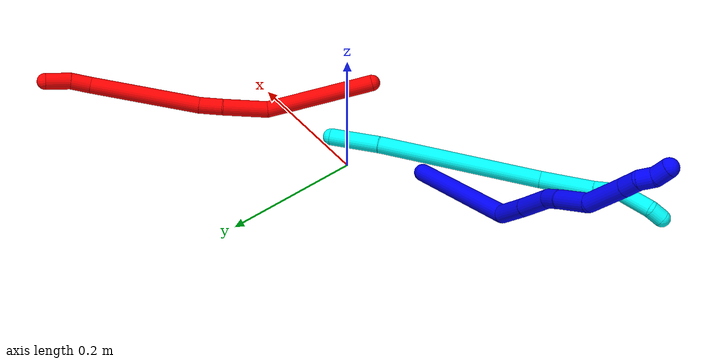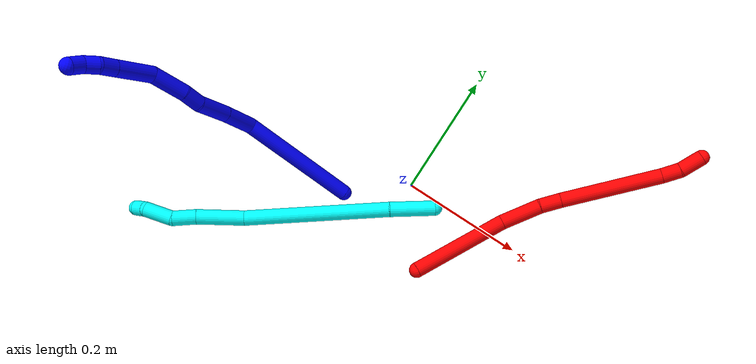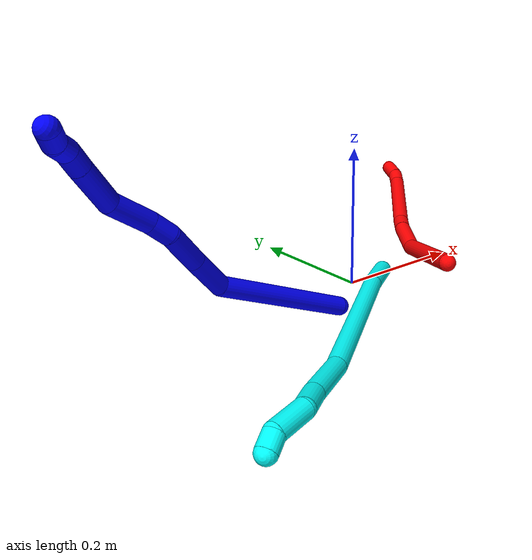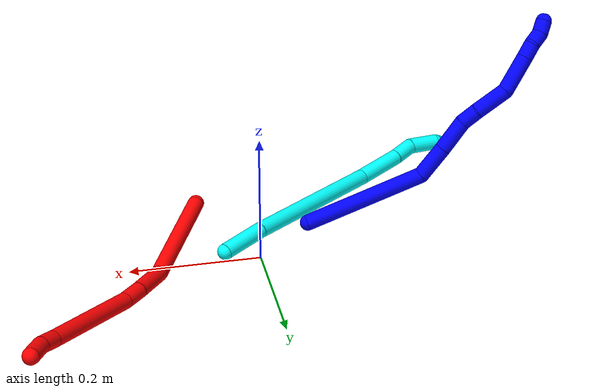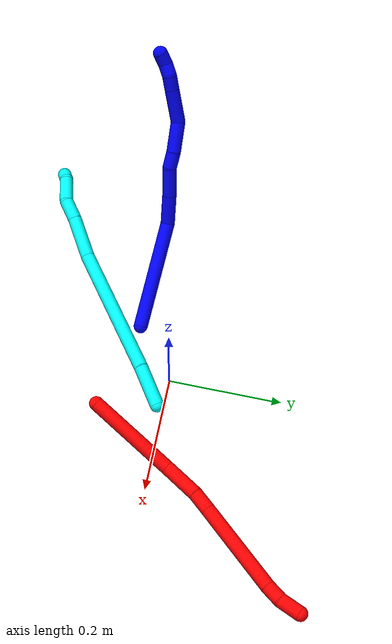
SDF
<sdf version="1.7">
 <world name="default">
  <model name="1">
   <static>0</static>
   <link name="1">
    <collision name="collision-cylinder-e_1_1_4">
     <pose>-0.032755 -0.01048 0.088832 0.117433 -0.351026 -0.020848</pose>
     <geometry><cylinder><radius>0.0125</radius><length>0.190514</length></cylinder></geometry>
     <surface>
      <friction><ode><mu>1.16</mu><mu2>1.16</mu2><slip1>0</slip1><slip2>0</slip2></ode></friction>
      <contact><ode><kp>1e+06</kp><kd>1</kd><max_vel>0</max_vel><min_depth>0.001</min_depth></ode></contact>
     </surface>
    </collision>
    <visual name="visual-cylinder-e_1_1_4">
     <pose>-0.032755 -0.01048 0.088832 0.117433 -0.351026 -0.020848</pose>
     <geometry><cylinder><radius>0.0125</radius><length>0.190514</length></cylinder></geometry>
     <material><ambient>0 0 1 1</ambient></material>
    </visual>
    <collision name="collision-cylinder-e_2_4_5">
     <pose>-0.06598 -0.013973 0.203246 -0.266605 -0.017697 0.002373</pose>
     <geometry><cylinder><radius>0.0125</radius><length>0.053046</length></cylinder></geometry>
     <surface>
      <friction><ode><mu>1.16</mu><mu2>1.16</mu2><slip1>0</slip1><slip2>0</slip2></ode></friction>
      <contact><ode><kp>1e+06</kp><kd>1</kd><max_vel>0</max_vel><min_depth>0.001</min_depth></ode></contact>
     </surface>
    </collision>
    <visual name="visual-cylinder-e_2_4_5">
     <pose>-0.06598 -0.013973 0.203246 -0.266605 -0.017697 0.002373</pose>
     <geometry><cylinder><radius>0.0125</radius><length>0.053046</length></cylinder></geometry>
     <material><ambient>0 0 1 1</ambient></material>
    </visual>
    <collision name="collision-cylinder-e_3_5_6">
     <pose>-0.065542 -0.000518 0.25345 -0.256917 0.035609 -0.0046</pose>
     <geometry><cylinder><radius>0.0125</radius><length>0.050947</length></cylinder></geometry>
     <surface>
      <friction><ode><mu>1.16</mu><mu2>1.16</mu2><slip1>0</slip1><slip2>0</slip2></ode></friction>
      <contact><ode><kp>1e+06</kp><kd>1</kd><max_vel>0</max_vel><min_depth>0.001</min_depth></ode></contact>
     </surface>
    </collision>
    <visual name="visual-cylinder-e_3_5_6">
     <pose>-0.065542 -0.000518 0.25345 -0.256917 0.035609 -0.0046</pose>
     <geometry><cylinder><radius>0.0125</radius><length>0.050947</length></cylinder></geometry>
     <material><ambient>0 0 1 1</ambient></material>
    </visual>
    <collision name="collision-cylinder-e_4_6_7">
     <pose>-0.068078 0.008703 0.291672 -0.199671 -0.243228 0.024483</pose>
     <geometry><cylinder><radius>0.0125</radius><length>0.028593</length></cylinder></geometry>
     <surface>
      <friction><ode><mu>1.16</mu><mu2>1.16</mu2><slip1>0</slip1><slip2>0</slip2></ode></friction>
      <contact><ode><kp>1e+06</kp><kd>1</kd><max_vel>0</max_vel><min_depth>0.001</min_depth></ode></contact>
     </surface>
    </collision>
    <visual name="visual-cylinder-e_4_6_7">
     <pose>-0.068078 0.008703 0.291672 -0.199671 -0.243228 0.024483</pose>
     <geometry><cylinder><radius>0.0125</radius><length>0.028593</length></cylinder></geometry>
     <material><ambient>0 0 1 1</ambient></material>
    </visual>
    <collision name="collision-cylinder-e_5_7_8">
     <pose>-0.076387 0.012611 0.331206 -0.04455 -0.185278 0.00414</pose>
     <geometry><cylinder><radius>0.0125</radius><length>0.052824</length></cylinder></geometry>
     <surface>
      <friction><ode><mu>1.16</mu><mu2>1.16</mu2><slip1>0</slip1><slip2>0</slip2></ode></friction>
      <contact><ode><kp>1e+06</kp><kd>1</kd><max_vel>0</max_vel><min_depth>0.001</min_depth></ode></contact>
     </surface>
    </collision>
    <visual name="visual-cylinder-e_5_7_8">
     <pose>-0.076387 0.012611 0.331206 -0.04455 -0.185278 0.00414</pose>
     <geometry><cylinder><radius>0.0125</radius><length>0.052824</length></cylinder></geometry>
     <material><ambient>0 0 1 1</ambient></material>
    </visual>
    <collision name="collision-cylinder-e_6_8_9">
     <pose>-0.074954 0.019564 0.385376 -0.202495 0.215132 -0.02194</pose>
     <geometry><cylinder><radius>0.0125</radius><length>0.059008</length></cylinder></geometry>
     <surface>
      <friction><ode><mu>1.16</mu><mu2>1.16</mu2><slip1>0</slip1><slip2>0</slip2></ode></friction>
      <contact><ode><kp>1e+06</kp><kd>1</kd><max_vel>0</max_vel><min_depth>0.001</min_depth></ode></contact>
     </surface>
    </collision>
    <visual name="visual-cylinder-e_6_8_9">
     <pose>-0.074954 0.019564 0.385376 -0.202495 0.215132 -0.02194</pose>
     <geometry><cylinder><radius>0.0125</radius><length>0.059008</length></cylinder></geometry>
     <material><ambient>0 0 1 1</ambient></material>
    </visual>
    <collision name="collision-cylinder-e_7_9_10">
     <pose>-0.066081 0.028064 0.424884 -0.235262 0.218541 -0.025928</pose>
     <geometry><cylinder><radius>0.0125</radius><length>0.023751</length></cylinder></geometry>
     <surface>
      <friction><ode><mu>1.16</mu><mu2>1.16</mu2><slip1>0</slip1><slip2>0</slip2></ode></friction>
      <contact><ode><kp>1e+06</kp><kd>1</kd><max_vel>0</max_vel><min_depth>0.001</min_depth></ode></contact>
     </surface>
    </collision>
    <visual name="visual-cylinder-e_7_9_10">
     <pose>-0.066081 0.028064 0.424884 -0.235262 0.218541 -0.025928</pose>
     <geometry><cylinder><radius>0.0125</radius><length>0.023751</length></cylinder></geometry>
     <material><ambient>0 0 1 1</ambient></material>
    </visual>
    <collision name="collision-cylinder-e_8_10_11">
     <pose>-0.06074 0.029589 0.446095 0.117828 0.269677 0.016003</pose>
     <geometry><cylinder><radius>0.0125</radius><length>0.020765</length></cylinder></geometry>
     <surface>
      <friction><ode><mu>1.16</mu><mu2>1.16</mu2><slip1>0</slip1><slip2>0</slip2></ode></friction>
      <contact><ode><kp>1e+06</kp><kd>1</kd><max_vel>0</max_vel><min_depth>0.001</min_depth></ode></contact>
     </surface>
    </collision>
    <visual name="visual-cylinder-e_8_10_11">
     <pose>-0.06074 0.029589 0.446095 0.117828 0.269677 0.016003</pose>
     <geometry><cylinder><radius>0.0125</radius><length>0.020765</length></cylinder></geometry>
     <material><ambient>0 0 1 1</ambient></material>
    </visual>
    <collision name="collision-cylinder-e_9_11_2">
     <pose>-0.053299 0.030317 0.464983 -0.209645 0.472384 -0.050633</pose>
     <geometry><cylinder><radius>0.0125</radius><length>0.020552</length></cylinder></geometry>
     <surface>
      <friction><ode><mu>1.16</mu><mu2>1.16</mu2><slip1>0</slip1><slip2>0</slip2></ode></friction>
      <contact><ode><kp>1e+06</kp><kd>1</kd><max_vel>0</max_vel><min_depth>0.001</min_depth></ode></contact>
     </surface>
    </collision>
    <visual name="visual-cylinder-e_9_11_2">
     <pose>-0.053299 0.030317 0.464983 -0.209645 0.472384 -0.050633</pose>
     <geometry><cylinder><radius>0.0125</radius><length>0.020552</length></cylinder></geometry>
     <material><ambient>0 0 1 1</ambient></material>
    </visual>
    <collision name="collision-sphere-2">
     <pose>-0.048623 0.032222 0.473934 0 -0 0</pose>
     <geometry><sphere><radius>0.0125</radius></sphere></geometry>
     <surface>
      <friction><ode><mu>1.16</mu><mu2>1.16</mu2><slip1>0</slip1><slip2>0</slip2></ode></friction>
      <contact><ode><kp>1e+06</kp><kd>1</kd><max_vel>0</max_vel><min_depth>0.001</min_depth></ode></contact>
     </surface>
    </collision>
    <visual name="visual-sphere-2">
     <pose>-0.048623 0.032222 0.473934 0 -0 0</pose>
     <geometry><sphere><radius>0.0125</radius></sphere></geometry>
     <material><ambient>0 0 1 1</ambient></material>
    </visual>
    <collision name="collision-sphere-11">
     <pose>-0.057974 0.028413 0.456033 0 -0 0</pose>
     <geometry><sphere><radius>0.0125</radius></sphere></geometry>
     <surface>
      <friction><ode><mu>1.16</mu><mu2>1.16</mu2><slip1>0</slip1><slip2>0</slip2></ode></friction>
      <contact><ode><kp>1e+06</kp><kd>1</kd><max_vel>0</max_vel><min_depth>0.001</min_depth></ode></contact>
     </surface>
    </collision>
    <visual name="visual-sphere-11">
     <pose>-0.057974 0.028413 0.456033 0 -0 0</pose>
     <geometry><sphere><radius>0.0125</radius></sphere></geometry>
     <material><ambient>0 0 1 1</ambient></material>
    </visual>
    <collision name="collision-sphere-10">
     <pose>-0.063506 0.030766 0.436158 0 -0 0</pose>
     <geometry><sphere><radius>0.0125</radius></sphere></geometry>
     <surface>
      <friction><ode><mu>1.16</mu><mu2>1.16</mu2><slip1>0</slip1><slip2>0</slip2></ode></friction>
      <contact><ode><kp>1e+06</kp><kd>1</kd><max_vel>0</max_vel><min_depth>0.001</min_depth></ode></contact>
     </surface>
    </collision>
    <visual name="visual-sphere-10">
     <pose>-0.063506 0.030766 0.436158 0 -0 0</pose>
     <geometry><sphere><radius>0.0125</radius></sphere></geometry>
     <material><ambient>0 0 1 1</ambient></material>
    </visual>
    <collision name="collision-sphere-9">
     <pose>-0.068656 0.025361 0.413611 0 -0 0</pose>
     <geometry><sphere><radius>0.0125</radius></sphere></geometry>
     <surface>
      <friction><ode><mu>1.16</mu><mu2>1.16</mu2><slip1>0</slip1><slip2>0</slip2></ode></friction>
      <contact><ode><kp>1e+06</kp><kd>1</kd><max_vel>0</max_vel><min_depth>0.001</min_depth></ode></contact>
     </surface>
    </collision>
    <visual name="visual-sphere-9">
     <pose>-0.068656 0.025361 0.413611 0 -0 0</pose>
     <geometry><sphere><radius>0.0125</radius></sphere></geometry>
     <material><ambient>0 0 1 1</ambient></material>
    </visual>
    <collision name="collision-sphere-4">
     <pose>-0.06551 -0.02096 0.177664 0 -0 0</pose>
     <geometry><sphere><radius>0.0125</radius></sphere></geometry>
     <surface>
      <friction><ode><mu>1.16</mu><mu2>1.16</mu2><slip1>0</slip1><slip2>0</slip2></ode></friction>
      <contact><ode><kp>1e+06</kp><kd>1</kd><max_vel>0</max_vel><min_depth>0.001</min_depth></ode></contact>
     </surface>
    </collision>
    <visual name="visual-sphere-4">
     <pose>-0.06551 -0.02096 0.177664 0 -0 0</pose>
     <geometry><sphere><radius>0.0125</radius></sphere></geometry>
     <material><ambient>0 0 1 1</ambient></material>
    </visual>
    <collision name="collision-sphere-1">
     <geometry><sphere><radius>0.0125</radius></sphere></geometry>
     <surface>
      <friction><ode><mu>1.16</mu><mu2>1.16</mu2><slip1>0</slip1><slip2>0</slip2></ode></friction>
      <contact><ode><kp>1e+06</kp><kd>1</kd><max_vel>0</max_vel><min_depth>0.001</min_depth></ode></contact>
     </surface>
    </collision>
    <visual name="visual-sphere-1">
     <geometry><sphere><radius>0.0125</radius></sphere></geometry>
     <material><ambient>0 0 1 1</ambient></material>
    </visual>
    <collision name="collision-sphere-8">
     <pose>-0.081253 0.013767 0.35714 0 -0 0</pose>
     <geometry><sphere><radius>0.0125</radius></sphere></geometry>
     <surface>
      <friction><ode><mu>1.16</mu><mu2>1.16</mu2><slip1>0</slip1><slip2>0</slip2></ode></friction>
      <contact><ode><kp>1e+06</kp><kd>1</kd><max_vel>0</max_vel><min_depth>0.001</min_depth></ode></contact>
     </surface>
    </collision>
    <visual name="visual-sphere-8">
     <pose>-0.081253 0.013767 0.35714 0 -0 0</pose>
     <geometry><sphere><radius>0.0125</radius></sphere></geometry>
     <material><ambient>0 0 1 1</ambient></material>
    </visual>
    <collision name="collision-sphere-5">
     <pose>-0.066449 -0.006987 0.228828 0 -0 0</pose>
     <geometry><sphere><radius>0.0125</radius></sphere></geometry>
     <surface>
      <friction><ode><mu>1.16</mu><mu2>1.16</mu2><slip1>0</slip1><slip2>0</slip2></ode></friction>
      <contact><ode><kp>1e+06</kp><kd>1</kd><max_vel>0</max_vel><min_depth>0.001</min_depth></ode></contact>
     </surface>
    </collision>
    <visual name="visual-sphere-5">
     <pose>-0.066449 -0.006987 0.228828 0 -0 0</pose>
     <geometry><sphere><radius>0.0125</radius></sphere></geometry>
     <material><ambient>0 0 1 1</ambient></material>
    </visual>
    <collision name="collision-sphere-6">
     <pose>-0.064635 0.005951 0.278072 0 -0 0</pose>
     <geometry><sphere><radius>0.0125</radius></sphere></geometry>
     <surface>
      <friction><ode><mu>1.16</mu><mu2>1.16</mu2><slip1>0</slip1><slip2>0</slip2></ode></friction>
      <contact><ode><kp>1e+06</kp><kd>1</kd><max_vel>0</max_vel><min_depth>0.001</min_depth></ode></contact>
     </surface>
    </collision>
    <visual name="visual-sphere-6">
     <pose>-0.064635 0.005951 0.278072 0 -0 0</pose>
     <geometry><sphere><radius>0.0125</radius></sphere></geometry>
     <material><ambient>0 0 1 1</ambient></material>
    </visual>
    <collision name="collision-sphere-7">
     <pose>-0.071521 0.011455 0.305272 0 -0 0</pose>
     <geometry><sphere><radius>0.0125</radius></sphere></geometry>
     <surface>
      <friction><ode><mu>1.16</mu><mu2>1.16</mu2><slip1>0</slip1><slip2>0</slip2></ode></friction>
      <contact><ode><kp>1e+06</kp><kd>1</kd><max_vel>0</max_vel><min_depth>0.001</min_depth></ode></contact>
     </surface>
    </collision>
    <visual name="visual-sphere-7">
     <pose>-0.071521 0.011455 0.305272 0 -0 0</pose>
     <geometry><sphere><radius>0.0125</radius></sphere></geometry>
     <material><ambient>0 0 1 1</ambient></material>
    </visual>
    <inertial>
     <pose>-0.05482 0.002419 0.236209 0 -0 0</pose>
     <mass>0.5</mass>
     <inertia>
      <ixx>0.000601</ixx>
      <ixy>0</ixy>
      <ixz>0</ixz>
      <iyy>0.000639</iyy>
      <iyz>0</iyz>
      <izz>0.000287</izz>
     </inertia>
    </inertial>
   </link>
   <pose>-0.087708 -0.070325 0.011532 0.931295 -0.234272 -1.14457</pose>
  </model>
  <model name="2">
   <static>0</static>
   <link name="2">
    <collision name="collision-cylinder-e_1_1_4">
     <pose>0.011723 0.004182 0.080701 -0.051773 0.144065 -0.003737</pose>
     <geometry><cylinder><radius>0.0125</radius><length>0.16331</length></cylinder></geometry>
     <surface>
      <friction><ode><mu>1.16</mu><mu2>1.16</mu2><slip1>0</slip1><slip2>0</slip2></ode></friction>
      <contact><ode><kp>1e+06</kp><kd>1</kd><max_vel>0</max_vel><min_depth>0.001</min_depth></ode></contact>
     </surface>
    </collision>
    <visual name="visual-cylinder-e_1_1_4">
     <pose>0.011723 0.004182 0.080701 -0.051773 0.144065 -0.003737</pose>
     <geometry><cylinder><radius>0.0125</radius><length>0.16331</length></cylinder></geometry>
     <material><ambient>1 0 0 1</ambient></material>
    </visual>
    <collision name="collision-cylinder-e_2_4_5">
     <pose>0.021006 0.019223 0.193638 -0.324926 -0.071598 0.01174</pose>
     <geometry><cylinder><radius>0.0125</radius><length>0.068206</length></cylinder></geometry>
     <surface>
      <friction><ode><mu>1.16</mu><mu2>1.16</mu2><slip1>0</slip1><slip2>0</slip2></ode></friction>
      <contact><ode><kp>1e+06</kp><kd>1</kd><max_vel>0</max_vel><min_depth>0.001</min_depth></ode></contact>
     </surface>
    </collision>
    <visual name="visual-cylinder-e_2_4_5">
     <pose>0.021006 0.019223 0.193638 -0.324926 -0.071598 0.01174</pose>
     <geometry><cylinder><radius>0.0125</radius><length>0.068206</length></cylinder></geometry>
     <material><ambient>1 0 0 1</ambient></material>
    </visual>
    <collision name="collision-cylinder-e_3_5_6">
     <pose>0.01583 0.033251 0.242947 -0.183498 -0.156284 0.014408</pose>
     <geometry><cylinder><radius>0.0125</radius><length>0.035158</length></cylinder></geometry>
     <surface>
      <friction><ode><mu>1.16</mu><mu2>1.16</mu2><slip1>0</slip1><slip2>0</slip2></ode></friction>
      <contact><ode><kp>1e+06</kp><kd>1</kd><max_vel>0</max_vel><min_depth>0.001</min_depth></ode></contact>
     </surface>
    </collision>
    <visual name="visual-cylinder-e_3_5_6">
     <pose>0.01583 0.033251 0.242947 -0.183498 -0.156284 0.014408</pose>
     <geometry><cylinder><radius>0.0125</radius><length>0.035158</length></cylinder></geometry>
     <material><ambient>1 0 0 1</ambient></material>
    </visual>
    <collision name="collision-cylinder-e_4_6_7">
     <pose>-0.005818 0.05864 0.337386 -0.279691 -0.230772 0.032626</pose>
     <geometry><cylinder><radius>0.0125</radius><length>0.16537</length></cylinder></geometry>
     <surface>
      <friction><ode><mu>1.16</mu><mu2>1.16</mu2><slip1>0</slip1><slip2>0</slip2></ode></friction>
      <contact><ode><kp>1e+06</kp><kd>1</kd><max_vel>0</max_vel><min_depth>0.001</min_depth></ode></contact>
     </surface>
    </collision>
    <visual name="visual-cylinder-e_4_6_7">
     <pose>-0.005818 0.05864 0.337386 -0.279691 -0.230772 0.032626</pose>
     <geometry><cylinder><radius>0.0125</radius><length>0.16537</length></cylinder></geometry>
     <material><ambient>1 0 0 1</ambient></material>
    </visual>
    <collision name="collision-cylinder-e_5_7_8">
     <pose>-0.027788 0.086655 0.428426 -0.400776 -0.203023 0.041373</pose>
     <geometry><cylinder><radius>0.0125</radius><length>0.030327</length></cylinder></geometry>
     <surface>
      <friction><ode><mu>1.16</mu><mu2>1.16</mu2><slip1>0</slip1><slip2>0</slip2></ode></friction>
      <contact><ode><kp>1e+06</kp><kd>1</kd><max_vel>0</max_vel><min_depth>0.001</min_depth></ode></contact>
     </surface>
    </collision>
    <visual name="visual-cylinder-e_5_7_8">
     <pose>-0.027788 0.086655 0.428426 -0.400776 -0.203023 0.041373</pose>
     <geometry><cylinder><radius>0.0125</radius><length>0.030327</length></cylinder></geometry>
     <material><ambient>1 0 0 1</ambient></material>
    </visual>
    <collision name="collision-cylinder-e_6_8_2">
     <pose>-0.030003 0.100118 0.459261 -0.420269 0.04478 -0.009552</pose>
     <geometry><cylinder><radius>0.0125</radius><length>0.037627</length></cylinder></geometry>
     <surface>
      <friction><ode><mu>1.16</mu><mu2>1.16</mu2><slip1>0</slip1><slip2>0</slip2></ode></friction>
      <contact><ode><kp>1e+06</kp><kd>1</kd><max_vel>0</max_vel><min_depth>0.001</min_depth></ode></contact>
     </surface>
    </collision>
    <visual name="visual-cylinder-e_6_8_2">
     <pose>-0.030003 0.100118 0.459261 -0.420269 0.04478 -0.009552</pose>
     <geometry><cylinder><radius>0.0125</radius><length>0.037627</length></cylinder></geometry>
     <material><ambient>1 0 0 1</ambient></material>
    </visual>
    <collision name="collision-sphere-2">
     <pose>-0.029161 0.107786 0.47642 0 -0 0</pose>
     <geometry><sphere><radius>0.0125</radius></sphere></geometry>
     <surface>
      <friction><ode><mu>1.16</mu><mu2>1.16</mu2><slip1>0</slip1><slip2>0</slip2></ode></friction>
      <contact><ode><kp>1e+06</kp><kd>1</kd><max_vel>0</max_vel><min_depth>0.001</min_depth></ode></contact>
     </surface>
    </collision>
    <visual name="visual-sphere-2">
     <pose>-0.029161 0.107786 0.47642 0 -0 0</pose>
     <geometry><sphere><radius>0.0125</radius></sphere></geometry>
     <material><ambient>1 0 0 1</ambient></material>
    </visual>
    <collision name="collision-sphere-4">
     <pose>0.023446 0.008364 0.161402 0 -0 0</pose>
     <geometry><sphere><radius>0.0125</radius></sphere></geometry>
     <surface>
      <friction><ode><mu>1.16</mu><mu2>1.16</mu2><slip1>0</slip1><slip2>0</slip2></ode></friction>
      <contact><ode><kp>1e+06</kp><kd>1</kd><max_vel>0</max_vel><min_depth>0.001</min_depth></ode></contact>
     </surface>
    </collision>
    <visual name="visual-sphere-4">
     <pose>0.023446 0.008364 0.161402 0 -0 0</pose>
     <geometry><sphere><radius>0.0125</radius></sphere></geometry>
     <material><ambient>1 0 0 1</ambient></material>
    </visual>
    <collision name="collision-sphere-1">
     <geometry><sphere><radius>0.0125</radius></sphere></geometry>
     <surface>
      <friction><ode><mu>1.16</mu><mu2>1.16</mu2><slip1>0</slip1><slip2>0</slip2></ode></friction>
      <contact><ode><kp>1e+06</kp><kd>1</kd><max_vel>0</max_vel><min_depth>0.001</min_depth></ode></contact>
     </surface>
    </collision>
    <visual name="visual-sphere-1">
     <geometry><sphere><radius>0.0125</radius></sphere></geometry>
     <material><ambient>1 0 0 1</ambient></material>
    </visual>
    <collision name="collision-sphere-8">
     <pose>-0.030846 0.09245 0.442102 0 -0 0</pose>
     <geometry><sphere><radius>0.0125</radius></sphere></geometry>
     <surface>
      <friction><ode><mu>1.16</mu><mu2>1.16</mu2><slip1>0</slip1><slip2>0</slip2></ode></friction>
      <contact><ode><kp>1e+06</kp><kd>1</kd><max_vel>0</max_vel><min_depth>0.001</min_depth></ode></contact>
     </surface>
    </collision>
    <visual name="visual-sphere-8">
     <pose>-0.030846 0.09245 0.442102 0 -0 0</pose>
     <geometry><sphere><radius>0.0125</radius></sphere></geometry>
     <material><ambient>1 0 0 1</ambient></material>
    </visual>
    <collision name="collision-sphere-5">
     <pose>0.018567 0.030082 0.225874 0 -0 0</pose>
     <geometry><sphere><radius>0.0125</radius></sphere></geometry>
     <surface>
      <friction><ode><mu>1.16</mu><mu2>1.16</mu2><slip1>0</slip1><slip2>0</slip2></ode></friction>
      <contact><ode><kp>1e+06</kp><kd>1</kd><max_vel>0</max_vel><min_depth>0.001</min_depth></ode></contact>
     </surface>
    </collision>
    <visual name="visual-sphere-5">
     <pose>0.018567 0.030082 0.225874 0 -0 0</pose>
     <geometry><sphere><radius>0.0125</radius></sphere></geometry>
     <material><ambient>1 0 0 1</ambient></material>
    </visual>
    <collision name="collision-sphere-6">
     <pose>0.013094 0.036419 0.26002 0 -0 0</pose>
     <geometry><sphere><radius>0.0125</radius></sphere></geometry>
     <surface>
      <friction><ode><mu>1.16</mu><mu2>1.16</mu2><slip1>0</slip1><slip2>0</slip2></ode></friction>
      <contact><ode><kp>1e+06</kp><kd>1</kd><max_vel>0</max_vel><min_depth>0.001</min_depth></ode></contact>
     </surface>
    </collision>
    <visual name="visual-sphere-6">
     <pose>0.013094 0.036419 0.26002 0 -0 0</pose>
     <geometry><sphere><radius>0.0125</radius></sphere></geometry>
     <material><ambient>1 0 0 1</ambient></material>
    </visual>
    <collision name="collision-sphere-7">
     <pose>-0.024731 0.080861 0.414751 0 -0 0</pose>
     <geometry><sphere><radius>0.0125</radius></sphere></geometry>
     <surface>
      <friction><ode><mu>1.16</mu><mu2>1.16</mu2><slip1>0</slip1><slip2>0</slip2></ode></friction>
      <contact><ode><kp>1e+06</kp><kd>1</kd><max_vel>0</max_vel><min_depth>0.001</min_depth></ode></contact>
     </surface>
    </collision>
    <visual name="visual-sphere-7">
     <pose>-0.024731 0.080861 0.414751 0 -0 0</pose>
     <geometry><sphere><radius>0.0125</radius></sphere></geometry>
     <material><ambient>1 0 0 1</ambient></material>
    </visual>
    <inertial>
     <pose>0.00194 0.038511 0.241991 0 -0 0</pose>
     <mass>0.5</mass>
     <inertia>
      <ixx>0.000791</ixx>
      <ixy>0</ixy>
      <ixz>0</ixz>
      <iyy>0.000799</iyy>
      <iyz>0</iyz>
      <izz>-6.1e-05</izz>
     </inertia>
    </inertial>
   </link>
   <pose>0.081233 -0.110062 0.043607 1.77435 0.44138 2.56938</pose>
  </model>
  <model name="3">
   <static>0</static>
   <link name="3">
    <collision name="collision-cylinder-e_1_1_4">
     <pose>-0.005686 -0.00188 0.036811 0.05102 -0.153059 -0.003913</pose>
     <geometry><cylinder><radius>0.0125</radius><length>0.07459</length></cylinder></geometry>
     <surface>
      <friction><ode><mu>1.16</mu><mu2>1.16</mu2><slip1>0</slip1><slip2>0</slip2></ode></friction>
      <contact><ode><kp>1e+06</kp><kd>1</kd><max_vel>0</max_vel><min_depth>0.001</min_depth></ode></contact>
     </surface>
    </collision>
    <visual name="visual-cylinder-e_1_1_4">
     <pose>-0.005686 -0.00188 0.036811 0.05102 -0.153059 -0.003913</pose>
     <geometry><cylinder><radius>0.0125</radius><length>0.07459</length></cylinder></geometry>
     <material><ambient>0.003922 1 0.996078 1</ambient></material>
    </visual>
    <collision name="collision-cylinder-e_2_4_5">
     <pose>-0.038718 -0.019476 0.189631 0.134659 -0.229471 -0.015541</pose>
     <geometry><cylinder><radius>0.0125</radius><length>0.24044</length></cylinder></geometry>
     <surface>
      <friction><ode><mu>1.16</mu><mu2>1.16</mu2><slip1>0</slip1><slip2>0</slip2></ode></friction>
      <contact><ode><kp>1e+06</kp><kd>1</kd><max_vel>0</max_vel><min_depth>0.001</min_depth></ode></contact>
     </surface>
    </collision>
    <visual name="visual-cylinder-e_2_4_5">
     <pose>-0.038718 -0.019476 0.189631 0.134659 -0.229471 -0.015541</pose>
     <geometry><cylinder><radius>0.0125</radius><length>0.24044</length></cylinder></geometry>
     <material><ambient>0.003922 1 0.996078 1</ambient></material>
    </visual>
    <collision name="collision-cylinder-e_3_5_6">
     <pose>-0.072214 -0.034748 0.344185 -0.011549 -0.158216 0.000916</pose>
     <geometry><cylinder><radius>0.0125</radius><length>0.078071</length></cylinder></geometry>
     <surface>
      <friction><ode><mu>1.16</mu><mu2>1.16</mu2><slip1>0</slip1><slip2>0</slip2></ode></friction>
      <contact><ode><kp>1e+06</kp><kd>1</kd><max_vel>0</max_vel><min_depth>0.001</min_depth></ode></contact>
     </surface>
    </collision>
    <visual name="visual-cylinder-e_3_5_6">
     <pose>-0.072214 -0.034748 0.344185 -0.011549 -0.158216 0.000916</pose>
     <geometry><cylinder><radius>0.0125</radius><length>0.078071</length></cylinder></geometry>
     <material><ambient>0.003922 1 0.996078 1</ambient></material>
    </visual>
    <collision name="collision-cylinder-e_4_6_7">
     <pose>-0.080039 -0.035478 0.401896 0.061234 -0.08704 -0.002667</pose>
     <geometry><cylinder><radius>0.0125</radius><length>0.038549</length></cylinder></geometry>
     <surface>
      <friction><ode><mu>1.16</mu><mu2>1.16</mu2><slip1>0</slip1><slip2>0</slip2></ode></friction>
      <contact><ode><kp>1e+06</kp><kd>1</kd><max_vel>0</max_vel><min_depth>0.001</min_depth></ode></contact>
     </surface>
    </collision>
    <visual name="visual-cylinder-e_4_6_7">
     <pose>-0.080039 -0.035478 0.401896 0.061234 -0.08704 -0.002667</pose>
     <geometry><cylinder><radius>0.0125</radius><length>0.038549</length></cylinder></geometry>
     <material><ambient>0.003922 1 0.996078 1</ambient></material>
    </visual>
    <collision name="collision-cylinder-e_5_7_8">
     <pose>-0.091796 -0.032116 0.442006 -0.21331 -0.439696 0.047839</pose>
     <geometry><cylinder><radius>0.0125</radius><length>0.047366</length></cylinder></geometry>
     <surface>
      <friction><ode><mu>1.16</mu><mu2>1.16</mu2><slip1>0</slip1><slip2>0</slip2></ode></friction>
      <contact><ode><kp>1e+06</kp><kd>1</kd><max_vel>0</max_vel><min_depth>0.001</min_depth></ode></contact>
     </surface>
    </collision>
    <visual name="visual-cylinder-e_5_7_8">
     <pose>-0.091796 -0.032116 0.442006 -0.21331 -0.439696 0.047839</pose>
     <geometry><cylinder><radius>0.0125</radius><length>0.047366</length></cylinder></geometry>
     <material><ambient>0.003922 1 0.996078 1</ambient></material>
    </visual>
    <collision name="collision-cylinder-e_6_8_2">
     <pose>-0.108984 -0.02988 0.470318 0.302628 -0.744181 -0.118876</pose>
     <geometry><cylinder><radius>0.0125</radius><length>0.020984</length></cylinder></geometry>
     <surface>
      <friction><ode><mu>1.16</mu><mu2>1.16</mu2><slip1>0</slip1><slip2>0</slip2></ode></friction>
      <contact><ode><kp>1e+06</kp><kd>1</kd><max_vel>0</max_vel><min_depth>0.001</min_depth></ode></contact>
     </surface>
    </collision>
    <visual name="visual-cylinder-e_6_8_2">
     <pose>-0.108984 -0.02988 0.470318 0.302628 -0.744181 -0.118876</pose>
     <geometry><cylinder><radius>0.0125</radius><length>0.020984</length></cylinder></geometry>
     <material><ambient>0.003922 1 0.996078 1</ambient></material>
    </visual>
    <collision name="collision-sphere-2">
     <pose>-0.116091 -0.03218 0.477686 0 -0 0</pose>
     <geometry><sphere><radius>0.0125</radius></sphere></geometry>
     <surface>
      <friction><ode><mu>1.16</mu><mu2>1.16</mu2><slip1>0</slip1><slip2>0</slip2></ode></friction>
      <contact><ode><kp>1e+06</kp><kd>1</kd><max_vel>0</max_vel><min_depth>0.001</min_depth></ode></contact>
     </surface>
    </collision>
    <visual name="visual-sphere-2">
     <pose>-0.116091 -0.03218 0.477686 0 -0 0</pose>
     <geometry><sphere><radius>0.0125</radius></sphere></geometry>
     <material><ambient>0.003922 1 0.996078 1</ambient></material>
    </visual>
    <collision name="collision-sphere-4">
     <pose>-0.011372 -0.00376 0.073622 0 -0 0</pose>
     <geometry><sphere><radius>0.0125</radius></sphere></geometry>
     <surface>
      <friction><ode><mu>1.16</mu><mu2>1.16</mu2><slip1>0</slip1><slip2>0</slip2></ode></friction>
      <contact><ode><kp>1e+06</kp><kd>1</kd><max_vel>0</max_vel><min_depth>0.001</min_depth></ode></contact>
     </surface>
    </collision>
    <visual name="visual-sphere-4">
     <pose>-0.011372 -0.00376 0.073622 0 -0 0</pose>
     <geometry><sphere><radius>0.0125</radius></sphere></geometry>
     <material><ambient>0.003922 1 0.996078 1</ambient></material>
    </visual>
    <collision name="collision-sphere-1">
     <geometry><sphere><radius>0.0125</radius></sphere></geometry>
     <surface>
      <friction><ode><mu>1.16</mu><mu2>1.16</mu2><slip1>0</slip1><slip2>0</slip2></ode></friction>
      <contact><ode><kp>1e+06</kp><kd>1</kd><max_vel>0</max_vel><min_depth>0.001</min_depth></ode></contact>
     </surface>
    </collision>
    <visual name="visual-sphere-1">
     <geometry><sphere><radius>0.0125</radius></sphere></geometry>
     <material><ambient>0.003922 1 0.996078 1</ambient></material>
    </visual>
    <collision name="collision-sphere-8">
     <pose>-0.101877 -0.027579 0.462951 0 -0 0</pose>
     <geometry><sphere><radius>0.0125</radius></sphere></geometry>
     <surface>
      <friction><ode><mu>1.16</mu><mu2>1.16</mu2><slip1>0</slip1><slip2>0</slip2></ode></friction>
      <contact><ode><kp>1e+06</kp><kd>1</kd><max_vel>0</max_vel><min_depth>0.001</min_depth></ode></contact>
     </surface>
    </collision>
    <visual name="visual-sphere-8">
     <pose>-0.101877 -0.027579 0.462951 0 -0 0</pose>
     <geometry><sphere><radius>0.0125</radius></sphere></geometry>
     <material><ambient>0.003922 1 0.996078 1</ambient></material>
    </visual>
    <collision name="collision-sphere-5">
     <pose>-0.066063 -0.035193 0.30564 0 -0 0</pose>
     <geometry><sphere><radius>0.0125</radius></sphere></geometry>
     <surface>
      <friction><ode><mu>1.16</mu><mu2>1.16</mu2><slip1>0</slip1><slip2>0</slip2></ode></friction>
      <contact><ode><kp>1e+06</kp><kd>1</kd><max_vel>0</max_vel><min_depth>0.001</min_depth></ode></contact>
     </surface>
    </collision>
    <visual name="visual-sphere-5">
     <pose>-0.066063 -0.035193 0.30564 0 -0 0</pose>
     <geometry><sphere><radius>0.0125</radius></sphere></geometry>
     <material><ambient>0.003922 1 0.996078 1</ambient></material>
    </visual>
    <collision name="collision-sphere-6">
     <pose>-0.078364 -0.034303 0.38273 0 -0 0</pose>
     <geometry><sphere><radius>0.0125</radius></sphere></geometry>
     <surface>
      <friction><ode><mu>1.16</mu><mu2>1.16</mu2><slip1>0</slip1><slip2>0</slip2></ode></friction>
      <contact><ode><kp>1e+06</kp><kd>1</kd><max_vel>0</max_vel><min_depth>0.001</min_depth></ode></contact>
     </surface>
    </collision>
    <visual name="visual-sphere-6">
     <pose>-0.078364 -0.034303 0.38273 0 -0 0</pose>
     <geometry><sphere><radius>0.0125</radius></sphere></geometry>
     <material><ambient>0.003922 1 0.996078 1</ambient></material>
    </visual>
    <collision name="collision-sphere-7">
     <pose>-0.081715 -0.036653 0.421061 0 -0 0</pose>
     <geometry><sphere><radius>0.0125</radius></sphere></geometry>
     <surface>
      <friction><ode><mu>1.16</mu><mu2>1.16</mu2><slip1>0</slip1><slip2>0</slip2></ode></friction>
      <contact><ode><kp>1e+06</kp><kd>1</kd><max_vel>0</max_vel><min_depth>0.001</min_depth></ode></contact>
     </surface>
    </collision>
    <visual name="visual-sphere-7">
     <pose>-0.081715 -0.036653 0.421061 0 -0 0</pose>
     <geometry><sphere><radius>0.0125</radius></sphere></geometry>
     <material><ambient>0.003922 1 0.996078 1</ambient></material>
    </visual>
    <inertial>
     <pose>-0.050183 -0.022103 0.243019 0 -0 0</pose>
     <mass>0.5</mass>
     <inertia>
      <ixx>0.001207</ixx>
      <ixy>0</ixy>
      <ixz>0</ixz>
      <iyy>0.001236</iyy>
      <iyz>0</iyz>
      <izz>0.000474</izz>
     </inertia>
    </inertial>
   </link>
   <pose>0.052326 -0.010547 0.011498 1.08762 -1.02623 -0.52308</pose>
  </model>
 </world>
</sdf>
